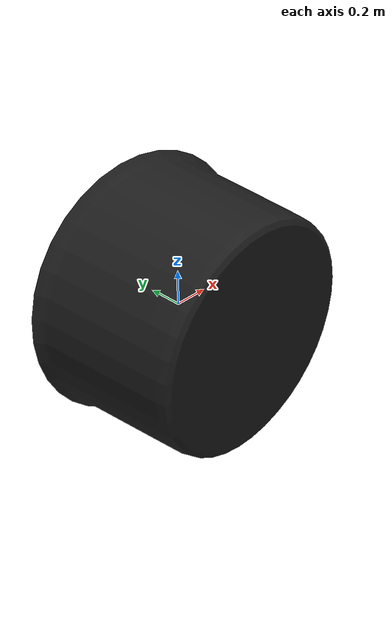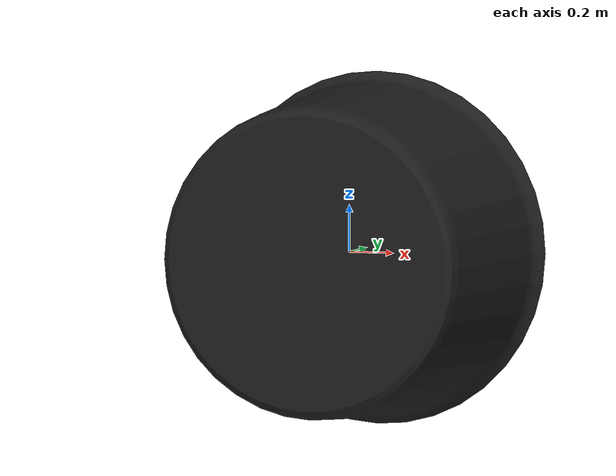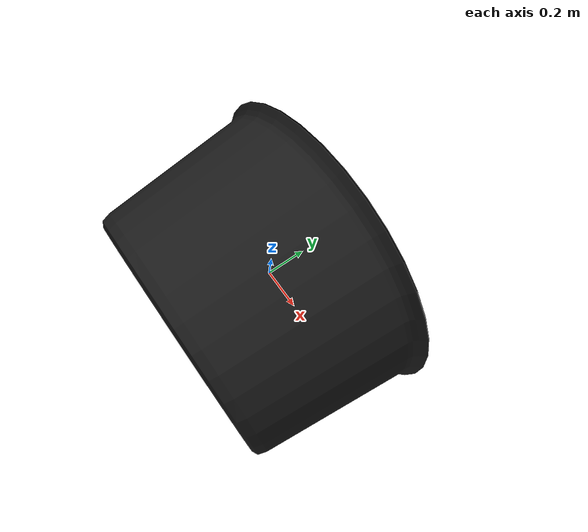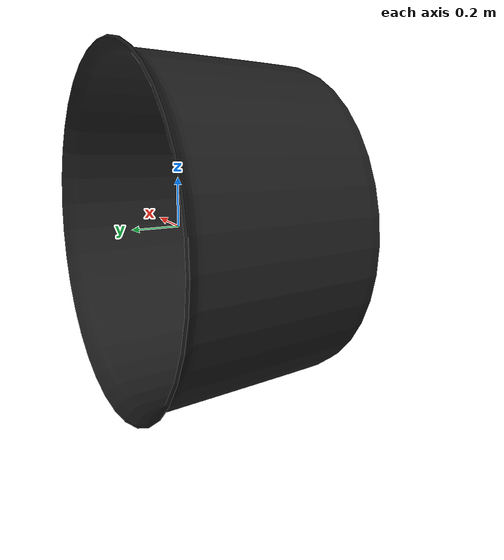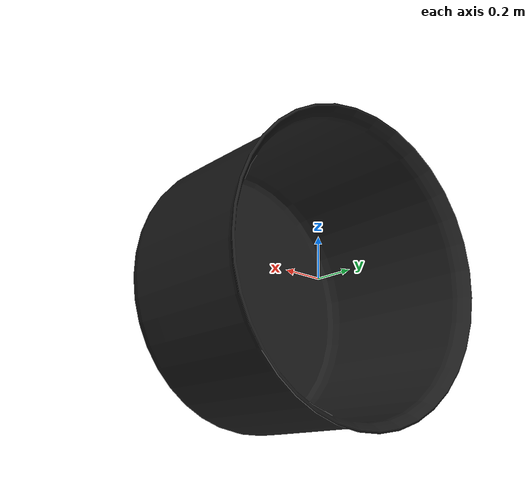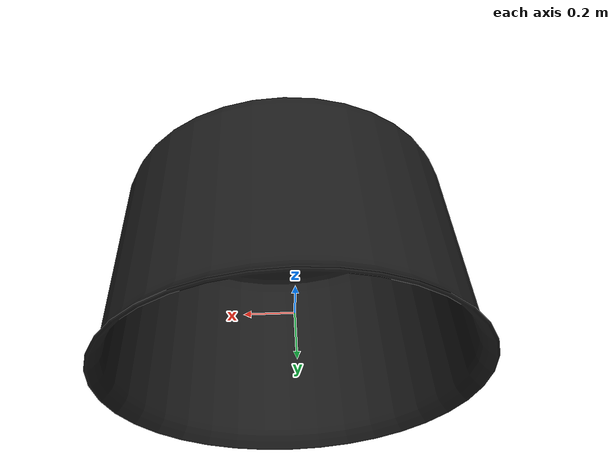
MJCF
<mujoco model="original-4">
  <default>
    <default class="visual">
      <geom group="2" type="mesh" contype="0" conaffinity="0"/>
    </default>
    <default class="collision">
      <geom group="3" type="mesh"/>
    </default>
  </default>
  <asset>
    <material name="material_0_0" specular="0.06666666666666667" shininess="0.03" rgba="0.10588235294117647 0.10588235294117647 0.10588235294117647 1"/>
    <mesh file="original-4.obj"/>
    <mesh file="original-4_collision_0.obj"/>
    <mesh file="original-4_collision_1.obj"/>
    <mesh file="original-4_collision_2.obj"/>
    <mesh file="original-4_collision_3.obj"/>
    <mesh file="original-4_collision_4.obj"/>
    <mesh file="original-4_collision_5.obj"/>
    <mesh file="original-4_collision_6.obj"/>
    <mesh file="original-4_collision_7.obj"/>
    <mesh file="original-4_collision_8.obj"/>
    <mesh file="original-4_collision_9.obj"/>
    <mesh file="original-4_collision_10.obj"/>
    <mesh file="original-4_collision_11.obj"/>
    <mesh file="original-4_collision_12.obj"/>
    <mesh file="original-4_collision_13.obj"/>
    <mesh file="original-4_collision_14.obj"/>
    <mesh file="original-4_collision_15.obj"/>
    <mesh file="original-4_collision_16.obj"/>
    <mesh file="original-4_collision_17.obj"/>
    <mesh file="original-4_collision_18.obj"/>
    <mesh file="original-4_collision_19.obj"/>
  </asset>
  <worldbody>
    <body name="original-4">
      <geom material="material_0_0" mesh="original-4" class="visual"/>
      <geom mesh="original-4_collision_0" rgba="0.5547124505732728 0.28580968996319356 0.04000341162131005 1" class="collision"/>
      <geom mesh="original-4_collision_1" rgba="0.339418589996791 0.4644663483787188 0.3660054538828015 1" class="collision"/>
      <geom mesh="original-4_collision_2" rgba="0.4208024564587779 0.5496273814966395 0.3119813654612984 1" class="collision"/>
      <geom mesh="original-4_collision_3" rgba="0.05300864503671576 0.13556187060659464 0.3257300187928388 1" class="collision"/>
      <geom mesh="original-4_collision_4" rgba="0.18207227089704436 0.8231655721328778 0.07404258016252019 1" class="collision"/>
      <geom mesh="original-4_collision_5" rgba="0.44297170249367934 0.009348434467845168 0.6466610207159441 1" class="collision"/>
      <geom mesh="original-4_collision_6" rgba="0.8532090046334334 0.48421739493158655 0.48397798837563855 1" class="collision"/>
      <geom mesh="original-4_collision_7" rgba="0.8876394878770731 0.7255576523743026 0.2940953938828331 1" class="collision"/>
      <geom mesh="original-4_collision_8" rgba="0.8716015372406988 0.7354138877379617 0.34401180931054565 1" class="collision"/>
      <geom mesh="original-4_collision_9" rgba="0.772621120758354 0.6137300819485588 0.9964289693233314 1" class="collision"/>
      <geom mesh="original-4_collision_10" rgba="0.6378209449729348 0.09684298535401148 0.152763905400225 1" class="collision"/>
      <geom mesh="original-4_collision_11" rgba="0.7452099364898621 0.9215918569800251 0.1412255210847384 1" class="collision"/>
      <geom mesh="original-4_collision_12" rgba="0.14821394352107264 0.4963566241966805 0.07628924594337771 1" class="collision"/>
      <geom mesh="original-4_collision_13" rgba="0.21857091944140195 0.6770051702355617 0.4204507993392824 1" class="collision"/>
      <geom mesh="original-4_collision_14" rgba="0.9764763219485141 0.2654339199341351 0.5567335298667739 1" class="collision"/>
      <geom mesh="original-4_collision_15" rgba="0.0018022979096654623 0.03796711510369044 0.5387983497627966 1" class="collision"/>
      <geom mesh="original-4_collision_16" rgba="0.042176101266040544 0.044837107509896335 0.2122114744114072 1" class="collision"/>
      <geom mesh="original-4_collision_17" rgba="0.2153853992725745 0.9101181088419532 0.934975388100414 1" class="collision"/>
      <geom mesh="original-4_collision_18" rgba="0.6519872529676899 0.6520366399906943 0.5496265570572079 1" class="collision"/>
      <geom mesh="original-4_collision_19" rgba="0.39261366631073147 0.009986774476329341 0.3317480788877575 1" class="collision"/>
    </body>
  </worldbody>
</mujoco>
